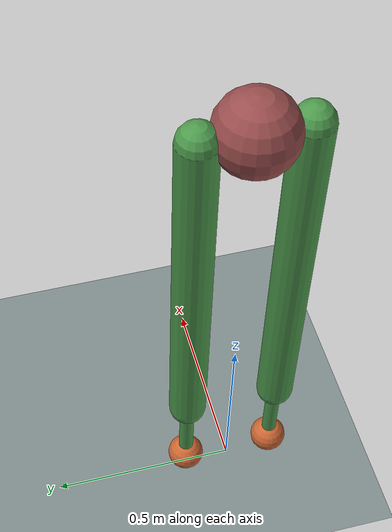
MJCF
<!-- VLL Passive Walker Model for RL Training -->
<!-- Yunus Emre Danabas -->

<!-- 3 DOF: x, z, pitch -->
<!-- 3 DOF: hip (right leg), left_knee, right_knee -->

<mujoco model="PassiveWalker_VLL">
  <option timestep="0.001" gravity="0 0 -9.81"/>

  <asset>
    <texture name="ground_tex" type="2d" builtin="checker" width="512" height="512"
             rgb1="0.8 0.8 0.8" rgb2="0.2 0.3 0.3"/>
    <material name="ground_mat" texture="ground_tex" texrepeat="20 20" reflectance="0.2"/>
    <material name="torso_mat" rgba="0.6 0.3 0.3 1"/>
    <material name="leg_mat" rgba="0.3 0.6 0.3 1"/>
    <material name="foot_mat" rgba="0.8 0.4 0.2 1"/>
  </asset>

  <worldbody>
    <!-- Ground plane -->
    <geom name="ground" type="plane" size="40 40 0.1" material="ground_mat"/>
    <light pos="10 0 30" dir="0 0 -1" diffuse="1 1 1" specular="0.5 0.5 0.5"/>
    <light pos="30 0 30" dir="0 0 -1" diffuse="1 1 1" specular="0.5 0.5 0.5"/>

    <!-- Torso with 3 DOF (x, z, pitch) -->
    <body name="torso" pos="0 0 1.3" euler="0 0 0">
      <joint name="slide_x" type="slide" axis="1 0 0"/>
      <joint name="slide_z" type="slide" axis="0 0 1"/>
      <joint name="pitch" type="hinge" axis="0 1 0"/>

      <!-- Main body -->
      <geom name="torso_geom" type="sphere" size="0.1" mass="5" material="torso_mat"/>

      <!-- Left Leg -->
      <body name="left_leg" pos="0 -0.125 -0.5" euler="0 0 0">
        <geom name="left_thigh" type="capsule" size="0.05 0.5" mass="1" material="leg_mat"/>
        <body name="left_foot" pos="0 0 -0.75">
          <!-- Left Knee Joint -->
          <joint name="left_knee" type="slide" pos="0 0 0.25" axis="0 0 -1"
                 range="-0.50 0.50" damping="1.0"/>
          <geom name="left_shin" type="capsule" fromto="0 0 0 0 0 0.5"
                size="0.02" material="leg_mat" mass="0.05"/>
          <geom name="left_foot_geom" type="sphere" size="0.05" material="foot_mat" mass="0.1"/>
        </body>
      </body>

      <!-- Right Leg -->
      <body name="right_leg" pos="0 0.125 -0.5" euler="0 0 0">
        <!-- Hip Joint -->
        <joint name="hip" type="hinge" pos="0 0 0.5" axis="0 -1 0" damping="0.1"/>
        <geom name="right_thigh" type="capsule" size="0.05 0.5" mass="1" material="leg_mat"/>
        <body name="right_foot" pos="0 0 -0.75">
          <!-- Right Knee Joint -->
          <joint name="right_knee" type="slide" pos="0 0 0.25" axis="0 0 -1"
                 range="-0.50 0.50" damping="1.0"/>
          <geom name="right_shin" type="capsule" fromto="0 0 0 0 0 0.5"
                size="0.02" material="leg_mat" mass="0.05"/>
          <geom name="right_foot_geom" type="sphere" size="0.05" material="foot_mat" mass="0.1"/>
        </body>
      </body>
    </body>
  </worldbody>

  <actuator>
    <!-- Neutral General Actuators for PD Control -->
    <general name="hip_act" joint="hip" gaintype="fixed" gainprm="1"
             biastype="affine" biasprm="0 0 0" ctrllimited="true" ctrlrange="-50 50"/>
    <general name="left_knee_act" joint="left_knee" gaintype="fixed" gainprm="1"
             biastype="affine" biasprm="0 0 0" ctrllimited="true" ctrlrange="-800 800"/>
    <general name="right_knee_act" joint="right_knee" gaintype="fixed" gainprm="1"
             biastype="affine" biasprm="0 0 0" ctrllimited="true" ctrlrange="-800 800"/>
  </actuator>

</mujoco>
